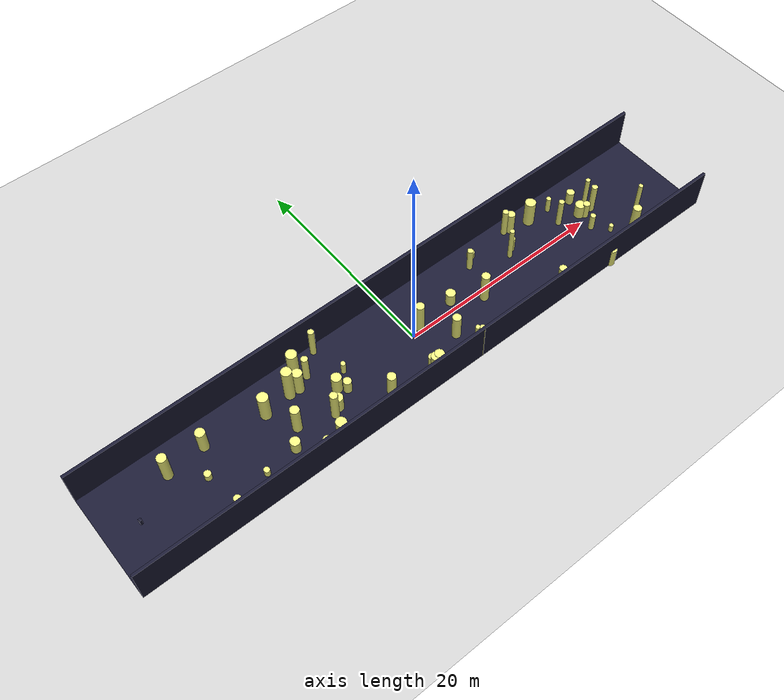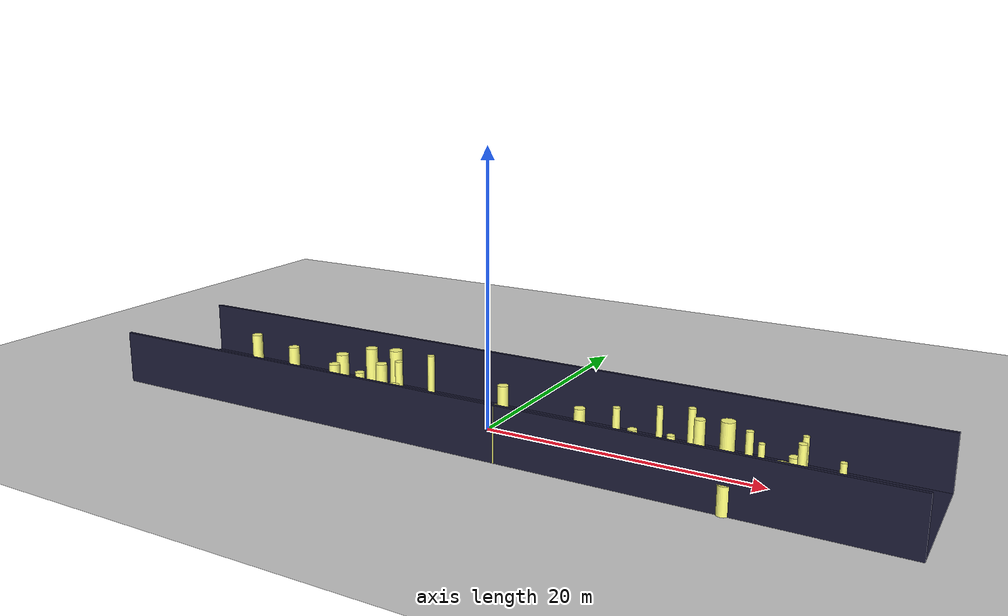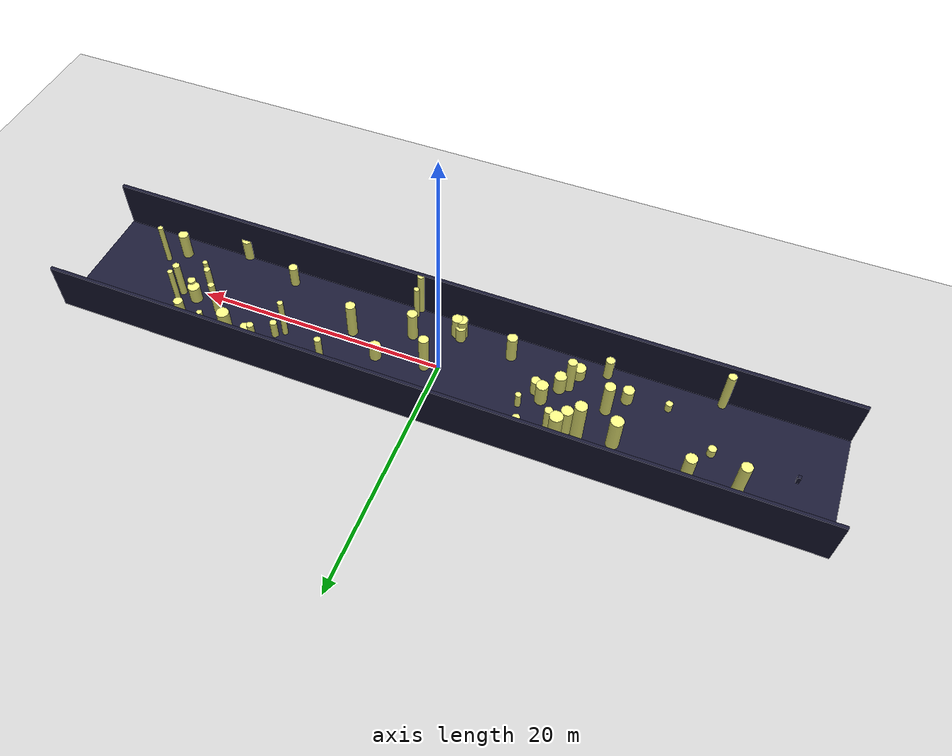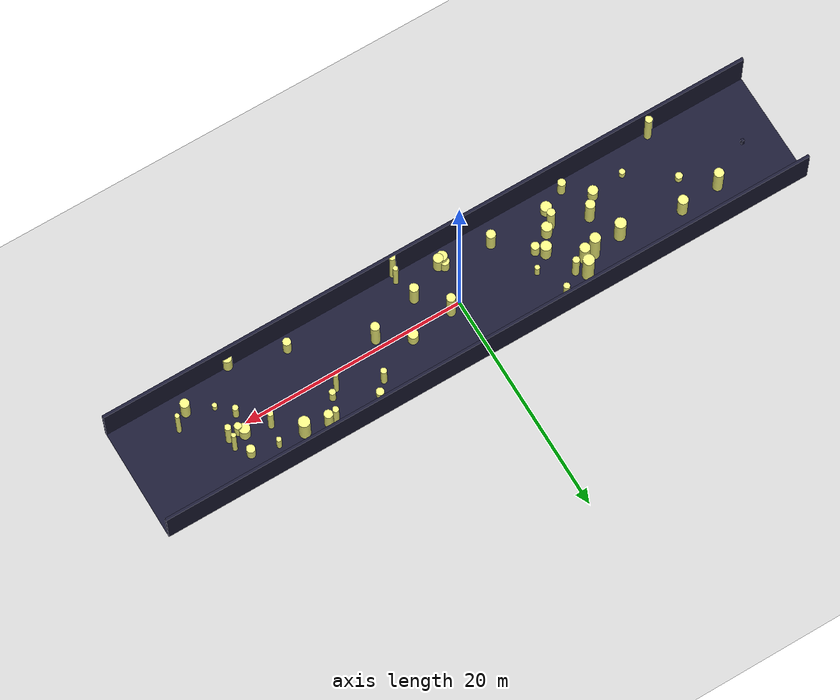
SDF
<?xml version="1.0"?>
<sdf version="1.4">
  <world name="default">
    <gui>
      <camera name="user_camera">
        <pose>-20 -30 40 0 0.66 0.83</pose>
      </camera>
    </gui>
    <include>
      <uri>model://ground_plane</uri>
    </include>
    <include>
      <uri>model://sun</uri>
    </include>
    <scene>
      <shadows>0</shadows>
    </scene>
    <model name="forest">
      <static>true</static>
      <link name="cylinder0">
        <pose>3.3737502944169506 -4.860557654843144 1.9623529160691626 0 0 0 </pose>
        <visual name="visual">
          <geometry>
            <cylinder>
              <radius>0.2695375889769469</radius>
              <length>3.9247058321383252</length>
            </cylinder>
          </geometry>
          <material>
            <ambient>0.6 0.6 0.6 1</ambient>
            <diffuse>1 1 0.5 1</diffuse>
            <specular>0 0 0</specular>
            <emissive>0 0 0 1</emissive>
          </material>
        </visual>
        <collision name="collision">
          <geometry>
            <cylinder>
              <radius>0.2695375889769469</radius>
              <length>3.9247058321383252</length>
            </cylinder>
          </geometry>
          <max_contacts>0</max_contacts>
        </collision>
      </link>
      <link name="cylinder1">
        <pose>4.836015918014745 0.8167103356891028 0.7018445063124266 0 0 0 </pose>
        <visual name="visual">
          <geometry>
            <cylinder>
              <radius>0.4444573654709</radius>
              <length>1.4036890126248531</length>
            </cylinder>
          </geometry>
          <material>
            <ambient>0.6 0.6 0.6 1</ambient>
            <diffuse>1 1 0.5 1</diffuse>
            <specular>0 0 0</specular>
            <emissive>0 0 0 1</emissive>
          </material>
        </visual>
        <collision name="collision">
          <geometry>
            <cylinder>
              <radius>0.4444573654709</radius>
              <length>1.4036890126248531</length>
            </cylinder>
          </geometry>
          <max_contacts>0</max_contacts>
        </collision>
      </link>
      <link name="cylinder2">
        <pose>14.28043120911321 3.500365996429478 1.1819015729626359 0 0 0 </pose>
        <visual name="visual">
          <geometry>
            <cylinder>
              <radius>0.37974859748606327</radius>
              <length>2.3638031459252717</length>
            </cylinder>
          </geometry>
          <material>
            <ambient>0.6 0.6 0.6 1</ambient>
            <diffuse>1 1 0.5 1</diffuse>
            <specular>0 0 0</specular>
            <emissive>0 0 0 1</emissive>
          </material>
        </visual>
        <collision name="collision">
          <geometry>
            <cylinder>
              <radius>0.37974859748606327</radius>
              <length>2.3638031459252717</length>
            </cylinder>
          </geometry>
          <max_contacts>0</max_contacts>
        </collision>
      </link>
      <link name="cylinder3">
        <pose>9.504718083166566 3.4639257083550277 0.3633090452775037 0 0 0 </pose>
        <visual name="visual">
          <geometry>
            <cylinder>
              <radius>0.34970384177324276</radius>
              <length>0.7266180905550074</length>
            </cylinder>
          </geometry>
          <material>
            <ambient>0.6 0.6 0.6 1</ambient>
            <diffuse>1 1 0.5 1</diffuse>
            <specular>0 0 0</specular>
            <emissive>0 0 0 1</emissive>
          </material>
        </visual>
        <collision name="collision">
          <geometry>
            <cylinder>
              <radius>0.34970384177324276</radius>
              <length>0.7266180905550074</length>
            </cylinder>
          </geometry>
          <max_contacts>0</max_contacts>
        </collision>
      </link>
      <link name="cylinder4">
        <pose>-9.412959534709714 2.600552923683269 1.406931488785584 0 0 0 </pose>
        <visual name="visual">
          <geometry>
            <cylinder>
              <radius>0.3027250303732749</radius>
              <length>2.813862977571168</length>
            </cylinder>
          </geometry>
          <material>
            <ambient>0.6 0.6 0.6 1</ambient>
            <diffuse>1 1 0.5 1</diffuse>
            <specular>0 0 0</specular>
            <emissive>0 0 0 1</emissive>
          </material>
        </visual>
        <collision name="collision">
          <geometry>
            <cylinder>
              <radius>0.3027250303732749</radius>
              <length>2.813862977571168</length>
            </cylinder>
          </geometry>
          <max_contacts>0</max_contacts>
        </collision>
      </link>
      <link name="cylinder5">
        <pose>-10.612581538084736 2.002240612530601 1.3030094467424054 0 0 0 </pose>
        <visual name="visual">
          <geometry>
            <cylinder>
              <radius>0.4434665598069153</radius>
              <length>2.6060188934848108</length>
            </cylinder>
          </geometry>
          <material>
            <ambient>0.6 0.6 0.6 1</ambient>
            <diffuse>1 1 0.5 1</diffuse>
            <specular>0 0 0</specular>
            <emissive>0 0 0 1</emissive>
          </material>
        </visual>
        <collision name="collision">
          <geometry>
            <cylinder>
              <radius>0.4434665598069153</radius>
              <length>2.6060188934848108</length>
            </cylinder>
          </geometry>
          <max_contacts>0</max_contacts>
        </collision>
      </link>
      <link name="cylinder6">
        <pose>-17.11179984058493 -2.6912123950934275 0.39447781214674904 0 0 0 </pose>
        <visual name="visual">
          <geometry>
            <cylinder>
              <radius>0.26152288776661187</radius>
              <length>0.7889556242934981</length>
            </cylinder>
          </geometry>
          <material>
            <ambient>0.6 0.6 0.6 1</ambient>
            <diffuse>1 1 0.5 1</diffuse>
            <specular>0 0 0</specular>
            <emissive>0 0 0 1</emissive>
          </material>
        </visual>
        <collision name="collision">
          <geometry>
            <cylinder>
              <radius>0.26152288776661187</radius>
              <length>0.7889556242934981</length>
            </cylinder>
          </geometry>
          <max_contacts>0</max_contacts>
        </collision>
      </link>
      <link name="cylinder7">
        <pose>-7.516546247115663 -0.5804205490038017 0.7231498114976418 0 0 0 </pose>
        <visual name="visual">
          <geometry>
            <cylinder>
              <radius>0.3646781645791165</radius>
              <length>1.4462996229952836</length>
            </cylinder>
          </geometry>
          <material>
            <ambient>0.6 0.6 0.6 1</ambient>
            <diffuse>1 1 0.5 1</diffuse>
            <specular>0 0 0</specular>
            <emissive>0 0 0 1</emissive>
          </material>
        </visual>
        <collision name="collision">
          <geometry>
            <cylinder>
              <radius>0.3646781645791165</radius>
              <length>1.4462996229952836</length>
            </cylinder>
          </geometry>
          <max_contacts>0</max_contacts>
        </collision>
      </link>
      <link name="cylinder8">
        <pose>-10.125744380988927 -3.151688395094844 0.5545502404579478 0 0 0 </pose>
        <visual name="visual">
          <geometry>
            <cylinder>
              <radius>0.48229228653343603</radius>
              <length>1.1091004809158955</length>
            </cylinder>
          </geometry>
          <material>
            <ambient>0.6 0.6 0.6 1</ambient>
            <diffuse>1 1 0.5 1</diffuse>
            <specular>0 0 0</specular>
            <emissive>0 0 0 1</emissive>
          </material>
        </visual>
        <collision name="collision">
          <geometry>
            <cylinder>
              <radius>0.48229228653343603</radius>
              <length>1.1091004809158955</length>
            </cylinder>
          </geometry>
          <max_contacts>0</max_contacts>
        </collision>
      </link>
      <link name="cylinder9">
        <pose>13.943515603693903 -3.6719465815765084 0.9482040500167874 0 0 0 </pose>
        <visual name="visual">
          <geometry>
            <cylinder>
              <radius>0.35315334159219963</radius>
              <length>1.8964081000335749</length>
            </cylinder>
          </geometry>
          <material>
            <ambient>0.6 0.6 0.6 1</ambient>
            <diffuse>1 1 0.5 1</diffuse>
            <specular>0 0 0</specular>
            <emissive>0 0 0 1</emissive>
          </material>
        </visual>
        <collision name="collision">
          <geometry>
            <cylinder>
              <radius>0.35315334159219963</radius>
              <length>1.8964081000335749</length>
            </cylinder>
          </geometry>
          <max_contacts>0</max_contacts>
        </collision>
      </link>
      <link name="cylinder10">
        <pose>13.68524657244678 3.6470011706181733 1.4871005029455984 0 0 0 </pose>
        <visual name="visual">
          <geometry>
            <cylinder>
              <radius>0.26938960662947536</radius>
              <length>2.9742010058911967</length>
            </cylinder>
          </geometry>
          <material>
            <ambient>0.6 0.6 0.6 1</ambient>
            <diffuse>1 1 0.5 1</diffuse>
            <specular>0 0 0</specular>
            <emissive>0 0 0 1</emissive>
          </material>
        </visual>
        <collision name="collision">
          <geometry>
            <cylinder>
              <radius>0.26938960662947536</radius>
              <length>2.9742010058911967</length>
            </cylinder>
          </geometry>
          <max_contacts>0</max_contacts>
        </collision>
      </link>
      <link name="cylinder11">
        <pose>-4.789149645865464 -2.9985715308997896 1.1840620004067557 0 0 0 </pose>
        <visual name="visual">
          <geometry>
            <cylinder>
              <radius>0.40267571087600773</radius>
              <length>2.3681240008135114</length>
            </cylinder>
          </geometry>
          <material>
            <ambient>0.6 0.6 0.6 1</ambient>
            <diffuse>1 1 0.5 1</diffuse>
            <specular>0 0 0</specular>
            <emissive>0 0 0 1</emissive>
          </material>
        </visual>
        <collision name="collision">
          <geometry>
            <cylinder>
              <radius>0.40267571087600773</radius>
              <length>2.3681240008135114</length>
            </cylinder>
          </geometry>
          <max_contacts>0</max_contacts>
        </collision>
      </link>
      <link name="cylinder12">
        <pose>-10.14791600020063 3.313245725905116 1.7020484046762643 0 0 0 </pose>
        <visual name="visual">
          <geometry>
            <cylinder>
              <radius>0.49274545811563447</radius>
              <length>3.4040968093525286</length>
            </cylinder>
          </geometry>
          <material>
            <ambient>0.6 0.6 0.6 1</ambient>
            <diffuse>1 1 0.5 1</diffuse>
            <specular>0 0 0</specular>
            <emissive>0 0 0 1</emissive>
          </material>
        </visual>
        <collision name="collision">
          <geometry>
            <cylinder>
              <radius>0.49274545811563447</radius>
              <length>3.4040968093525286</length>
            </cylinder>
          </geometry>
          <max_contacts>0</max_contacts>
        </collision>
      </link>
      <link name="cylinder13">
        <pose>-12.131560467658552 -4.044992895929836 0.9497185398539677 0 0 0 </pose>
        <visual name="visual">
          <geometry>
            <cylinder>
              <radius>0.33859435930683845</radius>
              <length>1.8994370797079354</length>
            </cylinder>
          </geometry>
          <material>
            <ambient>0.6 0.6 0.6 1</ambient>
            <diffuse>1 1 0.5 1</diffuse>
            <specular>0 0 0</specular>
            <emissive>0 0 0 1</emissive>
          </material>
        </visual>
        <collision name="collision">
          <geometry>
            <cylinder>
              <radius>0.33859435930683845</radius>
              <length>1.8994370797079354</length>
            </cylinder>
          </geometry>
          <max_contacts>0</max_contacts>
        </collision>
      </link>
      <link name="cylinder14">
        <pose>3.4762161303876375 -4.184721133101423 1.5551892802453313 0 0 0 </pose>
        <visual name="visual">
          <geometry>
            <cylinder>
              <radius>0.2144307906976073</radius>
              <length>3.1103785604906626</length>
            </cylinder>
          </geometry>
          <material>
            <ambient>0.6 0.6 0.6 1</ambient>
            <diffuse>1 1 0.5 1</diffuse>
            <specular>0 0 0</specular>
            <emissive>0 0 0 1</emissive>
          </material>
        </visual>
        <collision name="collision">
          <geometry>
            <cylinder>
              <radius>0.2144307906976073</radius>
              <length>3.1103785604906626</length>
            </cylinder>
          </geometry>
          <max_contacts>0</max_contacts>
        </collision>
      </link>
      <link name="cylinder15">
        <pose>24.830912606400716 -2.190908339104322 1.7873248930805663 0 0 0 </pose>
        <visual name="visual">
          <geometry>
            <cylinder>
              <radius>0.20691012617625104</radius>
              <length>3.5746497861611326</length>
            </cylinder>
          </geometry>
          <material>
            <ambient>0.6 0.6 0.6 1</ambient>
            <diffuse>1 1 0.5 1</diffuse>
            <specular>0 0 0</specular>
            <emissive>0 0 0 1</emissive>
          </material>
        </visual>
        <collision name="collision">
          <geometry>
            <cylinder>
              <radius>0.20691012617625104</radius>
              <length>3.5746497861611326</length>
            </cylinder>
          </geometry>
          <max_contacts>0</max_contacts>
        </collision>
      </link>
      <link name="cylinder16">
        <pose>21.783435248551562 1.4547204282998605 1.672424432956101 0 0 0 </pose>
        <visual name="visual">
          <geometry>
            <cylinder>
              <radius>0.20675170181366925</radius>
              <length>3.344848865912202</length>
            </cylinder>
          </geometry>
          <material>
            <ambient>0.6 0.6 0.6 1</ambient>
            <diffuse>1 1 0.5 1</diffuse>
            <specular>0 0 0</specular>
            <emissive>0 0 0 1</emissive>
          </material>
        </visual>
        <collision name="collision">
          <geometry>
            <cylinder>
              <radius>0.20675170181366925</radius>
              <length>3.344848865912202</length>
            </cylinder>
          </geometry>
          <max_contacts>0</max_contacts>
        </collision>
      </link>
      <link name="cylinder17">
        <pose>7.444643522679421 -0.704376334932495 1.6010096062534769 0 0 0 </pose>
        <visual name="visual">
          <geometry>
            <cylinder>
              <radius>0.3877961586214036</radius>
              <length>3.2020192125069538</length>
            </cylinder>
          </geometry>
          <material>
            <ambient>0.6 0.6 0.6 1</ambient>
            <diffuse>1 1 0.5 1</diffuse>
            <specular>0 0 0</specular>
            <emissive>0 0 0 1</emissive>
          </material>
        </visual>
        <collision name="collision">
          <geometry>
            <cylinder>
              <radius>0.3877961586214036</radius>
              <length>3.2020192125069538</length>
            </cylinder>
          </geometry>
          <max_contacts>0</max_contacts>
        </collision>
      </link>
      <link name="cylinder18">
        <pose>-0.5763779269619285 -3.2323573206194114 0.7161063032748372 0 0 0 </pose>
        <visual name="visual">
          <geometry>
            <cylinder>
              <radius>0.38763723647833026</radius>
              <length>1.4322126065496743</length>
            </cylinder>
          </geometry>
          <material>
            <ambient>0.6 0.6 0.6 1</ambient>
            <diffuse>1 1 0.5 1</diffuse>
            <specular>0 0 0</specular>
            <emissive>0 0 0 1</emissive>
          </material>
        </visual>
        <collision name="collision">
          <geometry>
            <cylinder>
              <radius>0.38763723647833026</radius>
              <length>1.4322126065496743</length>
            </cylinder>
          </geometry>
          <max_contacts>0</max_contacts>
        </collision>
      </link>
      <link name="cylinder19">
        <pose>-9.755630484845312 -1.8411499244336191 1.5766916331264909 0 0 0 </pose>
        <visual name="visual">
          <geometry>
            <cylinder>
              <radius>0.347756661985396</radius>
              <length>3.1533832662529817</length>
            </cylinder>
          </geometry>
          <material>
            <ambient>0.6 0.6 0.6 1</ambient>
            <diffuse>1 1 0.5 1</diffuse>
            <specular>0 0 0</specular>
            <emissive>0 0 0 1</emissive>
          </material>
        </visual>
        <collision name="collision">
          <geometry>
            <cylinder>
              <radius>0.347756661985396</radius>
              <length>3.1533832662529817</length>
            </cylinder>
          </geometry>
          <max_contacts>0</max_contacts>
        </collision>
      </link>
      <link name="cylinder20">
        <pose>-6.718167843142147 1.0470846962277243 0.6611896417596834 0 0 0 </pose>
        <visual name="visual">
          <geometry>
            <cylinder>
              <radius>0.2235985162834778</radius>
              <length>1.3223792835193668</length>
            </cylinder>
          </geometry>
          <material>
            <ambient>0.6 0.6 0.6 1</ambient>
            <diffuse>1 1 0.5 1</diffuse>
            <specular>0 0 0</specular>
            <emissive>0 0 0 1</emissive>
          </material>
        </visual>
        <collision name="collision">
          <geometry>
            <cylinder>
              <radius>0.2235985162834778</radius>
              <length>1.3223792835193668</length>
            </cylinder>
          </geometry>
          <max_contacts>0</max_contacts>
        </collision>
      </link>
      <link name="cylinder21">
        <pose>21.820280032513026 0.588275964688167 1.5731486681360844 0 0 0 </pose>
        <visual name="visual">
          <geometry>
            <cylinder>
              <radius>0.2740883923365239</radius>
              <length>3.146297336272169</length>
            </cylinder>
          </geometry>
          <material>
            <ambient>0.6 0.6 0.6 1</ambient>
            <diffuse>1 1 0.5 1</diffuse>
            <specular>0 0 0</specular>
            <emissive>0 0 0 1</emissive>
          </material>
        </visual>
        <collision name="collision">
          <geometry>
            <cylinder>
              <radius>0.2740883923365239</radius>
              <length>3.146297336272169</length>
            </cylinder>
          </geometry>
          <max_contacts>0</max_contacts>
        </collision>
      </link>
      <link name="cylinder22">
        <pose>18.325146296952305 1.2730519965960188 1.5275132439940473 0 0 0 </pose>
        <visual name="visual">
          <geometry>
            <cylinder>
              <radius>0.2569725980580395</radius>
              <length>3.0550264879880946</length>
            </cylinder>
          </geometry>
          <material>
            <ambient>0.6 0.6 0.6 1</ambient>
            <diffuse>1 1 0.5 1</diffuse>
            <specular>0 0 0</specular>
            <emissive>0 0 0 1</emissive>
          </material>
        </visual>
        <collision name="collision">
          <geometry>
            <cylinder>
              <radius>0.2569725980580395</radius>
              <length>3.0550264879880946</length>
            </cylinder>
          </geometry>
          <max_contacts>0</max_contacts>
        </collision>
      </link>
      <link name="cylinder23">
        <pose>-0.15083741063338252 -3.5621693572327318 0.9577152547725157 0 0 0 </pose>
        <visual name="visual">
          <geometry>
            <cylinder>
              <radius>0.4300066822092137</radius>
              <length>1.9154305095450315</length>
            </cylinder>
          </geometry>
          <material>
            <ambient>0.6 0.6 0.6 1</ambient>
            <diffuse>1 1 0.5 1</diffuse>
            <specular>0 0 0</specular>
            <emissive>0 0 0 1</emissive>
          </material>
        </visual>
        <collision name="collision">
          <geometry>
            <cylinder>
              <radius>0.4300066822092137</radius>
              <length>1.9154305095450315</length>
            </cylinder>
          </geometry>
          <max_contacts>0</max_contacts>
        </collision>
      </link>
      <link name="cylinder24">
        <pose>20.490192171080807 0.809477418810709 0.7572638403640854 0 0 0 </pose>
        <visual name="visual">
          <geometry>
            <cylinder>
              <radius>0.47519309844344937</radius>
              <length>1.514527680728171</length>
            </cylinder>
          </geometry>
          <material>
            <ambient>0.6 0.6 0.6 1</ambient>
            <diffuse>1 1 0.5 1</diffuse>
            <specular>0 0 0</specular>
            <emissive>0 0 0 1</emissive>
          </material>
        </visual>
        <collision name="collision">
          <geometry>
            <cylinder>
              <radius>0.47519309844344937</radius>
              <length>1.514527680728171</length>
            </cylinder>
          </geometry>
          <max_contacts>0</max_contacts>
        </collision>
      </link>
      <link name="cylinder25">
        <pose>18.768546371936864 -4.931172158992647 0.9593212626824693 0 0 0 </pose>
        <visual name="visual">
          <geometry>
            <cylinder>
              <radius>0.4128670269189576</radius>
              <length>1.9186425253649386</length>
            </cylinder>
          </geometry>
          <material>
            <ambient>0.6 0.6 0.6 1</ambient>
            <diffuse>1 1 0.5 1</diffuse>
            <specular>0 0 0</specular>
            <emissive>0 0 0 1</emissive>
          </material>
        </visual>
        <collision name="collision">
          <geometry>
            <cylinder>
              <radius>0.4128670269189576</radius>
              <length>1.9186425253649386</length>
            </cylinder>
          </geometry>
          <max_contacts>0</max_contacts>
        </collision>
      </link>
      <link name="cylinder26">
        <pose>1.0049966651992932 0.36941227178547287 1.6738508294563137 0 0 0 </pose>
        <visual name="visual">
          <geometry>
            <cylinder>
              <radius>0.39070899632589906</radius>
              <length>3.3477016589126274</length>
            </cylinder>
          </geometry>
          <material>
            <ambient>0.6 0.6 0.6 1</ambient>
            <diffuse>1 1 0.5 1</diffuse>
            <specular>0 0 0</specular>
            <emissive>0 0 0 1</emissive>
          </material>
        </visual>
        <collision name="collision">
          <geometry>
            <cylinder>
              <radius>0.39070899632589906</radius>
              <length>3.3477016589126274</length>
            </cylinder>
          </geometry>
          <max_contacts>0</max_contacts>
        </collision>
      </link>
      <link name="cylinder27">
        <pose>-11.523470171699534 2.0492867280321514 1.8470740269115609 0 0 0 </pose>
        <visual name="visual">
          <geometry>
            <cylinder>
              <radius>0.46384799772200075</radius>
              <length>3.6941480538231217</length>
            </cylinder>
          </geometry>
          <material>
            <ambient>0.6 0.6 0.6 1</ambient>
            <diffuse>1 1 0.5 1</diffuse>
            <specular>0 0 0</specular>
            <emissive>0 0 0 1</emissive>
          </material>
        </visual>
        <collision name="collision">
          <geometry>
            <cylinder>
              <radius>0.46384799772200075</radius>
              <length>3.6941480538231217</length>
            </cylinder>
          </geometry>
          <max_contacts>0</max_contacts>
        </collision>
      </link>
      <link name="cylinder28">
        <pose>-14.078589932227214 -2.3370275770499904 0.6791026418349314 0 0 0 </pose>
        <visual name="visual">
          <geometry>
            <cylinder>
              <radius>0.43298199299307094</radius>
              <length>1.3582052836698628</length>
            </cylinder>
          </geometry>
          <material>
            <ambient>0.6 0.6 0.6 1</ambient>
            <diffuse>1 1 0.5 1</diffuse>
            <specular>0 0 0</specular>
            <emissive>0 0 0 1</emissive>
          </material>
        </visual>
        <collision name="collision">
          <geometry>
            <cylinder>
              <radius>0.43298199299307094</radius>
              <length>1.3582052836698628</length>
            </cylinder>
          </geometry>
          <max_contacts>0</max_contacts>
        </collision>
      </link>
      <link name="cylinder29">
        <pose>-20.7175719508771 -4.556098788391502 1.7632176310821683 0 0 0 </pose>
        <visual name="visual">
          <geometry>
            <cylinder>
              <radius>0.3143639202106646</radius>
              <length>3.5264352621643367</length>
            </cylinder>
          </geometry>
          <material>
            <ambient>0.6 0.6 0.6 1</ambient>
            <diffuse>1 1 0.5 1</diffuse>
            <specular>0 0 0</specular>
            <emissive>0 0 0 1</emissive>
          </material>
        </visual>
        <collision name="collision">
          <geometry>
            <cylinder>
              <radius>0.3143639202106646</radius>
              <length>3.5264352621643367</length>
            </cylinder>
          </geometry>
          <max_contacts>0</max_contacts>
        </collision>
      </link>
      <link name="cylinder30">
        <pose>20.913560621391085 2.5213393833210764 0.7023040917804048 0 0 0 </pose>
        <visual name="visual">
          <geometry>
            <cylinder>
              <radius>0.3730623943140713</radius>
              <length>1.4046081835608095</length>
            </cylinder>
          </geometry>
          <material>
            <ambient>0.6 0.6 0.6 1</ambient>
            <diffuse>1 1 0.5 1</diffuse>
            <specular>0 0 0</specular>
            <emissive>0 0 0 1</emissive>
          </material>
        </visual>
        <collision name="collision">
          <geometry>
            <cylinder>
              <radius>0.3730623943140713</radius>
              <length>1.4046081835608095</length>
            </cylinder>
          </geometry>
          <max_contacts>0</max_contacts>
        </collision>
      </link>
      <link name="cylinder31">
        <pose>-14.137996032045585 1.7573030735197115 1.4429051810191873 0 0 0 </pose>
        <visual name="visual">
          <geometry>
            <cylinder>
              <radius>0.49006719587059827</radius>
              <length>2.8858103620383746</length>
            </cylinder>
          </geometry>
          <material>
            <ambient>0.6 0.6 0.6 1</ambient>
            <diffuse>1 1 0.5 1</diffuse>
            <specular>0 0 0</specular>
            <emissive>0 0 0 1</emissive>
          </material>
        </visual>
        <collision name="collision">
          <geometry>
            <cylinder>
              <radius>0.49006719587059827</radius>
              <length>2.8858103620383746</length>
            </cylinder>
          </geometry>
          <max_contacts>0</max_contacts>
        </collision>
      </link>
      <link name="cylinder32">
        <pose>-8.162460582919028 0.02559542651352764 0.9585415654492113 0 0 0 </pose>
        <visual name="visual">
          <geometry>
            <cylinder>
              <radius>0.46399787153231</radius>
              <length>1.9170831308984226</length>
            </cylinder>
          </geometry>
          <material>
            <ambient>0.6 0.6 0.6 1</ambient>
            <diffuse>1 1 0.5 1</diffuse>
            <specular>0 0 0</specular>
            <emissive>0 0 0 1</emissive>
          </material>
        </visual>
        <collision name="collision">
          <geometry>
            <cylinder>
              <radius>0.46399787153231</radius>
              <length>1.9170831308984226</length>
            </cylinder>
          </geometry>
          <max_contacts>0</max_contacts>
        </collision>
      </link>
      <link name="cylinder33">
        <pose>8.640899259156754 2.633864752390487 1.2129899396505481 0 0 0 </pose>
        <visual name="visual">
          <geometry>
            <cylinder>
              <radius>0.263586607745587</radius>
              <length>2.4259798793010963</length>
            </cylinder>
          </geometry>
          <material>
            <ambient>0.6 0.6 0.6 1</ambient>
            <diffuse>1 1 0.5 1</diffuse>
            <specular>0 0 0</specular>
            <emissive>0 0 0 1</emissive>
          </material>
        </visual>
        <collision name="collision">
          <geometry>
            <cylinder>
              <radius>0.263586607745587</radius>
              <length>2.4259798793010963</length>
            </cylinder>
          </geometry>
          <max_contacts>0</max_contacts>
        </collision>
      </link>
      <link name="cylinder34">
        <pose>2.9723087309332534 -2.127032064169879 1.336736963043371 0 0 0 </pose>
        <visual name="visual">
          <geometry>
            <cylinder>
              <radius>0.3945891039114189</radius>
              <length>2.673473926086742</length>
            </cylinder>
          </geometry>
          <material>
            <ambient>0.6 0.6 0.6 1</ambient>
            <diffuse>1 1 0.5 1</diffuse>
            <specular>0 0 0</specular>
            <emissive>0 0 0 1</emissive>
          </material>
        </visual>
        <collision name="collision">
          <geometry>
            <cylinder>
              <radius>0.3945891039114189</radius>
              <length>2.673473926086742</length>
            </cylinder>
          </geometry>
          <max_contacts>0</max_contacts>
        </collision>
      </link>
      <link name="cylinder35">
        <pose>12.928818998267147 1.783267245124616 0.7647342414255209 0 0 0 </pose>
        <visual name="visual">
          <geometry>
            <cylinder>
              <radius>0.27497952155386574</radius>
              <length>1.5294684828510419</length>
            </cylinder>
          </geometry>
          <material>
            <ambient>0.6 0.6 0.6 1</ambient>
            <diffuse>1 1 0.5 1</diffuse>
            <specular>0 0 0</specular>
            <emissive>0 0 0 1</emissive>
          </material>
        </visual>
        <collision name="collision">
          <geometry>
            <cylinder>
              <radius>0.27497952155386574</radius>
              <length>1.5294684828510419</length>
            </cylinder>
          </geometry>
          <max_contacts>0</max_contacts>
        </collision>
      </link>
      <link name="cylinder36">
        <pose>18.62811268562851 3.066241704259113 0.8325642980675548 0 0 0 </pose>
        <visual name="visual">
          <geometry>
            <cylinder>
              <radius>0.22327108712588206</radius>
              <length>1.6651285961351097</length>
            </cylinder>
          </geometry>
          <material>
            <ambient>0.6 0.6 0.6 1</ambient>
            <diffuse>1 1 0.5 1</diffuse>
            <specular>0 0 0</specular>
            <emissive>0 0 0 1</emissive>
          </material>
        </visual>
        <collision name="collision">
          <geometry>
            <cylinder>
              <radius>0.22327108712588206</radius>
              <length>1.6651285961351097</length>
            </cylinder>
          </geometry>
          <max_contacts>0</max_contacts>
        </collision>
      </link>
      <link name="cylinder37">
        <pose>-23.236213278700703 2.1875116078633647 1.502794572983177 0 0 0 </pose>
        <visual name="visual">
          <geometry>
            <cylinder>
              <radius>0.42553530939771056</radius>
              <length>3.005589145966354</length>
            </cylinder>
          </geometry>
          <material>
            <ambient>0.6 0.6 0.6 1</ambient>
            <diffuse>1 1 0.5 1</diffuse>
            <specular>0 0 0</specular>
            <emissive>0 0 0 1</emissive>
          </material>
        </visual>
        <collision name="collision">
          <geometry>
            <cylinder>
              <radius>0.42553530939771056</radius>
              <length>3.005589145966354</length>
            </cylinder>
          </geometry>
          <max_contacts>0</max_contacts>
        </collision>
      </link>
      <link name="cylinder38">
        <pose>-12.872417346228405 -0.856681677100978 1.5031493521686703 0 0 0 </pose>
        <visual name="visual">
          <geometry>
            <cylinder>
              <radius>0.4139065896671259</radius>
              <length>3.0062987043373406</length>
            </cylinder>
          </geometry>
          <material>
            <ambient>0.6 0.6 0.6 1</ambient>
            <diffuse>1 1 0.5 1</diffuse>
            <specular>0 0 0</specular>
            <emissive>0 0 0 1</emissive>
          </material>
        </visual>
        <collision name="collision">
          <geometry>
            <cylinder>
              <radius>0.4139065896671259</radius>
              <length>3.0062987043373406</length>
            </cylinder>
          </geometry>
          <max_contacts>0</max_contacts>
        </collision>
      </link>
      <link name="cylinder39">
        <pose>-20.888215785463792 -0.013842091000205947 0.3862333481124416 0 0 0 </pose>
        <visual name="visual">
          <geometry>
            <cylinder>
              <radius>0.31153701823651264</radius>
              <length>0.7724666962248832</length>
            </cylinder>
          </geometry>
          <material>
            <ambient>0.6 0.6 0.6 1</ambient>
            <diffuse>1 1 0.5 1</diffuse>
            <specular>0 0 0</specular>
            <emissive>0 0 0 1</emissive>
          </material>
        </visual>
        <collision name="collision">
          <geometry>
            <cylinder>
              <radius>0.31153701823651264</radius>
              <length>0.7724666962248832</length>
            </cylinder>
          </geometry>
          <max_contacts>0</max_contacts>
        </collision>
      </link>
      <link name="cylinder40">
        <pose>23.632118820927026 -3.218153303204485 1.1633795216077272 0 0 0 </pose>
        <visual name="visual">
          <geometry>
            <cylinder>
              <radius>0.4053551846693508</radius>
              <length>2.3267590432154543</length>
            </cylinder>
          </geometry>
          <material>
            <ambient>0.6 0.6 0.6 1</ambient>
            <diffuse>1 1 0.5 1</diffuse>
            <specular>0 0 0</specular>
            <emissive>0 0 0 1</emissive>
          </material>
        </visual>
        <collision name="collision">
          <geometry>
            <cylinder>
              <radius>0.4053551846693508</radius>
              <length>2.3267590432154543</length>
            </cylinder>
          </geometry>
          <max_contacts>0</max_contacts>
        </collision>
      </link>
      <link name="cylinder41">
        <pose>16.321256689640315 3.177760730043694 1.3633540616239468 0 0 0 </pose>
        <visual name="visual">
          <geometry>
            <cylinder>
              <radius>0.4950260805460924</radius>
              <length>2.7267081232478936</length>
            </cylinder>
          </geometry>
          <material>
            <ambient>0.6 0.6 0.6 1</ambient>
            <diffuse>1 1 0.5 1</diffuse>
            <specular>0 0 0</specular>
            <emissive>0 0 0 1</emissive>
          </material>
        </visual>
        <collision name="collision">
          <geometry>
            <cylinder>
              <radius>0.4950260805460924</radius>
              <length>2.7267081232478936</length>
            </cylinder>
          </geometry>
          <max_contacts>0</max_contacts>
        </collision>
      </link>
      <link name="cylinder42">
        <pose>-19.647545968231196 2.50150565144033 1.216152089880467 0 0 0 </pose>
        <visual name="visual">
          <geometry>
            <cylinder>
              <radius>0.4355374968329457</radius>
              <length>2.432304179760934</length>
            </cylinder>
          </geometry>
          <material>
            <ambient>0.6 0.6 0.6 1</ambient>
            <diffuse>1 1 0.5 1</diffuse>
            <specular>0 0 0</specular>
            <emissive>0 0 0 1</emissive>
          </material>
        </visual>
        <collision name="collision">
          <geometry>
            <cylinder>
              <radius>0.4355374968329457</radius>
              <length>2.432304179760934</length>
            </cylinder>
          </geometry>
          <max_contacts>0</max_contacts>
        </collision>
      </link>
      <link name="cylinder43">
        <pose>-0.5290773480146562 -3.582986306655237 0.95367063296802 0 0 0 </pose>
        <visual name="visual">
          <geometry>
            <cylinder>
              <radius>0.4506446450971902</radius>
              <length>1.90734126593604</length>
            </cylinder>
          </geometry>
          <material>
            <ambient>0.6 0.6 0.6 1</ambient>
            <diffuse>1 1 0.5 1</diffuse>
            <specular>0 0 0</specular>
            <emissive>0 0 0 1</emissive>
          </material>
        </visual>
        <collision name="collision">
          <geometry>
            <cylinder>
              <radius>0.4506446450971902</radius>
              <length>1.90734126593604</length>
            </cylinder>
          </geometry>
          <max_contacts>0</max_contacts>
        </collision>
      </link>
      <link name="cylinder44">
        <pose>-7.528624615605022 4.218987410883999 1.5675801032684618 0 0 0 </pose>
        <visual name="visual">
          <geometry>
            <cylinder>
              <radius>0.2748965603101719</radius>
              <length>3.1351602065369235</length>
            </cylinder>
          </geometry>
          <material>
            <ambient>0.6 0.6 0.6 1</ambient>
            <diffuse>1 1 0.5 1</diffuse>
            <specular>0 0 0</specular>
            <emissive>0 0 0 1</emissive>
          </material>
        </visual>
        <collision name="collision">
          <geometry>
            <cylinder>
              <radius>0.2748965603101719</radius>
              <length>3.1351602065369235</length>
            </cylinder>
          </geometry>
          <max_contacts>0</max_contacts>
        </collision>
      </link>
      <link name="cylinder45">
        <pose>21.43775255846021 -2.36977986155675 0.38770757416623186 0 0 0 </pose>
        <visual name="visual">
          <geometry>
            <cylinder>
              <radius>0.2105554253222291</radius>
              <length>0.7754151483324637</length>
            </cylinder>
          </geometry>
          <material>
            <ambient>0.6 0.6 0.6 1</ambient>
            <diffuse>1 1 0.5 1</diffuse>
            <specular>0 0 0</specular>
            <emissive>0 0 0 1</emissive>
          </material>
        </visual>
        <collision name="collision">
          <geometry>
            <cylinder>
              <radius>0.2105554253222291</radius>
              <length>0.7754151483324637</length>
            </cylinder>
          </geometry>
          <max_contacts>0</max_contacts>
        </collision>
      </link>
      <link name="cylinder46">
        <pose>20.873338811339764 0.41285847811159826 0.8423164466146595 0 0 0 </pose>
        <visual name="visual">
          <geometry>
            <cylinder>
              <radius>0.31828629666300595</radius>
              <length>1.684632893229319</length>
            </cylinder>
          </geometry>
          <material>
            <ambient>0.6 0.6 0.6 1</ambient>
            <diffuse>1 1 0.5 1</diffuse>
            <specular>0 0 0</specular>
            <emissive>0 0 0 1</emissive>
          </material>
        </visual>
        <collision name="collision">
          <geometry>
            <cylinder>
              <radius>0.31828629666300595</radius>
              <length>1.684632893229319</length>
            </cylinder>
          </geometry>
          <max_contacts>0</max_contacts>
        </collision>
      </link>
      <link name="cylinder47">
        <pose>-9.136238271601155 -1.4472807549445301 0.8460126746799544 0 0 0 </pose>
        <visual name="visual">
          <geometry>
            <cylinder>
              <radius>0.45909751624143075</radius>
              <length>1.692025349359909</length>
            </cylinder>
          </geometry>
          <material>
            <ambient>0.6 0.6 0.6 1</ambient>
            <diffuse>1 1 0.5 1</diffuse>
            <specular>0 0 0</specular>
            <emissive>0 0 0 1</emissive>
          </material>
        </visual>
        <collision name="collision">
          <geometry>
            <cylinder>
              <radius>0.45909751624143075</radius>
              <length>1.692025349359909</length>
            </cylinder>
          </geometry>
          <max_contacts>0</max_contacts>
        </collision>
      </link>
      <link name="cylinder48">
        <pose>12.291190868271855 1.2987900800388017 1.7787598670628608 0 0 0 </pose>
        <visual name="visual">
          <geometry>
            <cylinder>
              <radius>0.2186359106912328</radius>
              <length>3.5575197341257216</length>
            </cylinder>
          </geometry>
          <material>
            <ambient>0.6 0.6 0.6 1</ambient>
            <diffuse>1 1 0.5 1</diffuse>
            <specular>0 0 0</specular>
            <emissive>0 0 0 1</emissive>
          </material>
        </visual>
        <collision name="collision">
          <geometry>
            <cylinder>
              <radius>0.2186359106912328</radius>
              <length>3.5575197341257216</length>
            </cylinder>
          </geometry>
          <max_contacts>0</max_contacts>
        </collision>
      </link>
      <link name="cylinder49">
        <pose>20.27482958230891 -1.0046790875569167 0.8834248528539264 0 0 0 </pose>
        <visual name="visual">
          <geometry>
            <cylinder>
              <radius>0.2578118226040768</radius>
              <length>1.7668497057078527</length>
            </cylinder>
          </geometry>
          <material>
            <ambient>0.6 0.6 0.6 1</ambient>
            <diffuse>1 1 0.5 1</diffuse>
            <specular>0 0 0</specular>
            <emissive>0 0 0 1</emissive>
          </material>
        </visual>
        <collision name="collision">
          <geometry>
            <cylinder>
              <radius>0.2578118226040768</radius>
              <length>1.7668497057078527</length>
            </cylinder>
          </geometry>
          <max_contacts>0</max_contacts>
        </collision>
      </link>
      <link name="cube0">
        <pose>0 5.0 2.0 0 0 0 </pose>
        <visual name="visual">
          <geometry>
            <box>
              <size>60.0 0.25 4.0</size>
            </box>
          </geometry>
          <material>
            <ambient>0.1 0.1 0.1 1</ambient>
            <diffuse>0.1 0.1 0.2 1</diffuse>
            <specular>0 0 0</specular>
            <emissive>0 0 0 1</emissive>
          </material>
        </visual>
        <collision name="collision">
          <geometry>
            <box>
              <size>60.0 0.25 4.0</size>
            </box>
          </geometry>
          <max_contacts>0</max_contacts>
        </collision>
      </link>
      <link name="cube1">
        <pose>0 -5.0 2.0 0 0 0 </pose>
        <visual name="visual">
          <geometry>
            <box>
              <size>60.0 0.25 4.0</size>
            </box>
          </geometry>
          <material>
            <ambient>0.1 0.1 0.1 1</ambient>
            <diffuse>0.1 0.1 0.2 1</diffuse>
            <specular>0 0 0</specular>
            <emissive>0 0 0 1</emissive>
          </material>
        </visual>
        <collision name="collision">
          <geometry>
            <box>
              <size>60.0 0.25 4.0</size>
            </box>
          </geometry>
          <max_contacts>0</max_contacts>
        </collision>
      </link>
      <link name="cube2">
        <pose>0 0 0.03125 0 0 0 </pose>
        <visual name="visual">
          <geometry>
            <box>
              <size>60.0 10 0.0625</size>
            </box>
          </geometry>
          <material>
            <ambient>0.1 0.1 0.1 1</ambient>
            <diffuse>0.1 0.1 0.2 1</diffuse>
            <specular>0 0 0</specular>
            <emissive>0 0 0 1</emissive>
          </material>
        </visual>
        <collision name="collision">
          <geometry>
            <box>
              <size>60.0 10 0.0625</size>
            </box>
          </geometry>
          <max_contacts>0</max_contacts>
        </collision>
      </link>
      <link name="cube3">
        <pose>-27.0 0.0 0.25 0 0 0 </pose>
        <visual name="visual">
          <geometry>
            <box>
              <size>0.25 0.25 1.0</size>
            </box>
          </geometry>
          <material>
            <ambient>0.1 0.1 0.1 1</ambient>
            <diffuse>0.1 0.1 0.2 1</diffuse>
            <specular>0 0 0</specular>
            <emissive>0 0 0 1</emissive>
          </material>
        </visual>
        <collision name="collision">
          <geometry>
            <box>
              <size>0.25 0.25 1.0</size>
            </box>
          </geometry>
          <max_contacts>0</max_contacts>
        </collision>
      </link>
    </model>
    <!-- Physics -->
    <physics name="default_physics" default="0" type="ode">
      <max_step_size>0.004</max_step_size>
      <real_time_factor>1</real_time_factor>
      <real_time_update_rate>250</real_time_update_rate>
      <gravity>0 0 -9.8</gravity>
      <magnetic_field>6e-06 2.3e-05 -4.2e-05</magnetic_field>
      <ode>
        <solver>
          <type>quick</type>
          <iters>1000</iters>
          <sor>1.3</sor>
          <use_dynamic_moi_rescaling>0</use_dynamic_moi_rescaling>
        </solver>
        <constraints>
          <cfm>0</cfm>
          <erp>0.2</erp>
          <contact_max_correcting_vel>100</contact_max_correcting_vel>
          <contact_surface_layer>0.001</contact_surface_layer>
        </constraints>
      </ode>
    </physics>
  </world>
</sdf>
